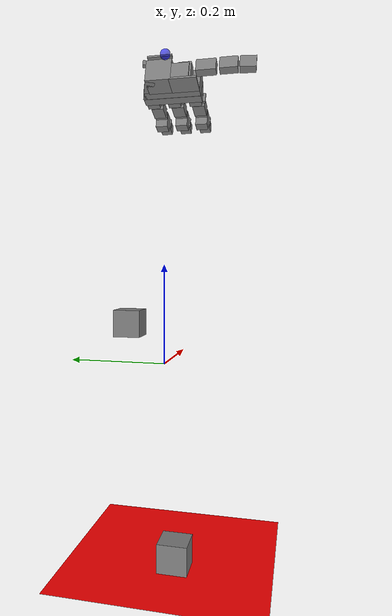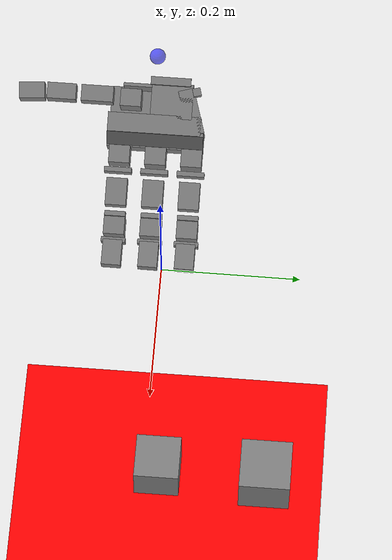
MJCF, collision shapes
<mujoco model="leap_hand_6dof_ctrl">
  <compiler meshdir=""/>

  <!-- Include LEAP Hand (provides finger actuators) -->
  <include file="leap_rh_mjx.xml"/>
  <!-- Include shared reorientation cube (visual + physical) -->
  <include file="reorientation_cube.xml"/>
  <statistic center="0.15 0 0" extent="0.4" meansize="0.01"/>

  <option timestep="0.01" integrator="Euler" iterations="5" ls_iterations="8">
      <flag eulerdamp="disable"/>
  </option>

  <visual>
    <headlight diffuse=".8 .8 .8" ambient=".2 .2 .2" specular="1 1 1"/>
    <rgba force="1 0 0 1"/>
    <global azimuth="120" elevation="-20"/>
    <map force="0.01" stiffness="500"/>
    <scale forcewidth="0.1" contactwidth="0.5" contactheight="0.2"/>
    <quality shadowsize="8192"/>
  </visual>

  <asset>
    <texture type="2d" name="groundplane" builtin="checker" mark="edge" rgb1="1 1 1" rgb2="1 1 1" markrgb="0 0 0"
      width="300" height="300"/>
    <material name="groundplane" texture="groundplane" texuniform="true" texrepeat="5 5" reflectance="0"/>
  </asset>

  <default>
    <default class="base6dof">
      <joint damping="1e-3" armature="0.0" limited="true"/>
      <position kp="120"/>
    </default>
  </default>

  <worldbody>
    <!-- 6-DoF controllable base -->
    <body name="hand_base" pos="0 0 0.6" quat="0 1 0 0">
      <!-- Provide mass and rotational inertia so this moving base is physically valid -->
      <inertial mass="1.0" diaginertia="0.01 0.01 0.01" pos="0 0 0"/>
      <!-- Translate -->
      <joint name="base_x" type="slide" axis="1 0 0" range="-1.0 1.0" damping="50.0" armature="0.01" class="base6dof"/>
      <joint name="base_y" type="slide" axis="0 1 0" range="-1.0 1.0" damping="50.0" armature="0.01" class="base6dof"/>
      <joint name="base_z" type="slide" axis="0 0 1" range="-1.4 3.0" damping="50.5" armature="0.015" class="base6dof"/>
      <!-- Rotate (ZYX order: yaw, pitch, roll) -->
      <joint name="base_yaw"   type="hinge" axis="0 0 1" range="-3.1416 3.1416" damping="2.0" armature="0.005" class="base6dof"/>
      <joint name="base_pitch" type="hinge" axis="0 1 0" range="-1.57 1.57" damping="2.0" armature="0.005" class="base6dof"/>
      <joint name="base_roll"  type="hinge" axis="1 0 0" range="-6.2832 6.2832" damping="2.0" armature="0.005" class="base6dof"/>
      <site name="base_mount_site" size="0.01" rgba="0 0 1 0.6"/>

    </body>

    <geom name="floor" pos="0 0 -0.5" size="0 0 0.01" type="plane"
    material="groundplane" contype="0" conaffinity="0" rgba="1 0 0 0.5"/>

    <!-- Invisible physical ground for contact tests (keeps grid visual clean) -->
    <geom type="plane" name="ground_physical" pos="0 0 -0.5" size="0 0 0.01" contype="1" conaffinity="1"
          friction="0.8 0.01 0.0001" rgba="1 1 1 0"/>

    <!-- 回転は気にしないが、位置としての目標としてgoal cubeを設定する。 -->
    <body name="goal" mocap="true" pos="0.325 0.17 0.0475">
      <geom type="mesh" mesh="cube_mesh" material="dexcube" contype="0" conaffinity="0" density="0" group="2"/>
      <geom type="box" size=".035 .035 .035" mass=".108" group="3"/>
    </body>
    <camera name="cam" pos="1.2 0.0 0.9" xyaxes="0.0 -1.0 0.0 0.4 0.0 0.9"/>
  </worldbody>

    <sensor>
    <!-- cube. -->
    <framepos name="cube_position" objtype="body" objname="cube"/>
    <framequat name="cube_orientation" objtype="body" objname="cube"/>
    <framelinvel name="cube_linvel" objtype="body" objname="cube"/>
    <frameangvel name="cube_angvel" objtype="body" objname="cube"/>
    <frameangacc name="cube_angacc" objtype="body" objname="cube"/>
    <framezaxis name="cube_upvector" objtype="body" objname="cube"/>

    <!-- hand. -->
    <framepos name="palm_position" objtype="site" objname="grasp_site"/>
    <framepos name="th_tip_position" objtype="site" objname="th_tip" reftype="site" refname="grasp_site"/>
    <framepos name="if_tip_position" objtype="site" objname="if_tip" reftype="site" refname="grasp_site"/>
    <framepos name="mf_tip_position" objtype="site" objname="mf_tip" reftype="site" refname="grasp_site"/>
    <framepos name="rf_tip_position" objtype="site" objname="rf_tip" reftype="site" refname="grasp_site"/>

    <!-- base (hand_base) pose and velocities -->
    <framepos name="base_position" objtype="body" objname="hand_base"/>
    <framequat name="base_orientation" objtype="body" objname="hand_base"/>
    <framelinvel name="base_linvel" objtype="body" objname="hand_base"/>
    <frameangvel name="base_angvel" objtype="body" objname="hand_base"/>

    <!-- base joint states -->
    <jointpos name="base_x_pos" joint="base_x"/>
    <jointpos name="base_y_pos" joint="base_y"/>
    <jointpos name="base_z_pos" joint="base_z"/>
    <jointpos name="base_yaw_pos" joint="base_yaw"/>
    <jointpos name="base_pitch_pos" joint="base_pitch"/>
    <jointpos name="base_roll_pos" joint="base_roll"/>

    <jointvel name="base_x_vel" joint="base_x"/>
    <jointvel name="base_y_vel" joint="base_y"/>
    <jointvel name="base_z_vel" joint="base_z"/>
    <jointvel name="base_yaw_vel" joint="base_yaw"/>
    <jointvel name="base_pitch_vel" joint="base_pitch"/>
    <jointvel name="base_roll_vel" joint="base_roll"/>

    <!-- goal. -->
    <framepos name="cube_goal_position" objtype="body" objname="goal"/>
    <framequat name="cube_goal_orientation" objtype="body" objname="goal"/>

  </sensor>

  <!-- Weld LEAP to the controllable base. Adjust relpose if needed to match the intended mounting -->
  <equality>
    <!-- Overdamped weld to reduce oscillations -->
    <weld body1="hand_base" body2="leap_mount" solref="0.01 2" solimp="0.98 0.995 0.001" relpose="0 0 0 1 0 0 0"/>
  </equality>

  <actuator>
    <!-- Position controllers for 6-DoF base (RL action can write to these) -->
    <position name="act_base_x"     joint="base_x"     kp="200" forcerange="-600 600"/>
    <position name="act_base_y"     joint="base_y"     kp="200" forcerange="-600 600"/>
    <position name="act_base_z"     joint="base_z"     kp="200" forcerange="-600 600"/>
    <position name="act_base_yaw"   joint="base_yaw"   kp="80"  forcerange="-250 250"/>
    <position name="act_base_pitch" joint="base_pitch" kp="80"  forcerange="-250 250"/>
    <position name="act_base_roll"  joint="base_roll"  kp="80"  forcerange="-250 250"/>
  </actuator>

  <!-- Keyframe for initial pose/control targets (also resets cube pose) -->
  <keyframe>
    <!-- qpos order:
         base(6), leap_mount_freejoint(7), finger joints(16), cube_freejoint(7) -->

    <key name="home" qpos="
      0.68 0.78 -0.31608 0.000307632 -0.968342 -1.26824e-05 0.249627 0.706534 -9.40659e-05 0.499187 0.764972 0.556337 -8.01922e-05 0.762973 -0.365415 0.626353 0.020783 1.40298 0.403332 1.6051 0.335327 -0.465174 0.832772 0.778537 0.796473 -0.465057 0.706203 0.706203 0.0357402 0.0357402 0.68 -0.78 0.915788 -8.37347e-17 -0.49089 0.000261597"
      qvel="
      -4.68571e-15 -5.0496e-15 2.12138e-15 -1.33856e-15 -3.46942e-16 2.61642e-16 3.63506e-15 -4.55496e-16 4.66854e-16 3.40429e-15 -5.28228e-15 -4.45993e-18 -5.37553e-15 -2.72037e-15 -5.33398e-15 -1.4865e-16 -1.09853e-14 -2.66017e-15 -1.06653e-14 2.69029e-15 2.61078e-15 5.37259e-15 -5.27737e-15 -7.89989e-16 -1.49461e-15 -1.34451e-14 4.48657e-15 1.2027e-15 -5.00556e-15 5.12734e-15 -4.73039e-15 2.48606e-16 1.88072e-16 -5.64889e-16"
      ctrl="
      0.69088 0 0.49822 0.76576 0.53824 0 0.76123 -0.366 0.61456 0.02094 1.4068 0.40456 1.6054 0.33504 -0.47 0.8335 0.68 -0.78 0.83 0 -0.48 0"
      mpos="0.325 0.17 0.0475"
      mquat="1 0 0 0"/>

    <key name="not_beautiful_meaningless" qpos="
      0 0 0 0 0 0
      0 0 0.6 1 0 0 0
      0.8 0 0.8 0.8
      0.8 0 0.8 0.8
      0.8 0 0.8 0.8
      0.8 0.8 0.8 0
      0.11 0.0 -0.465 1 0 0 0"
      ctrl="
      0 0 0 0  0 0 0 0  0 0 0 0  0 0 0 0
      0 0 0.3  0 0 0"
      mpos="0.325 0.17 0.0475"
      mquat="1 0 0 0"/>

  </keyframe>
</mujoco>

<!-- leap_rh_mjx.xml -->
<mujoco model="leap_rh">
  <compiler angle="radian" autolimits="true" meshdir=""/>

  <option timestep="0.01" integrator="Euler" iterations="5" ls_iterations="8">
    <flag eulerdamp="disable"/>
  </option>

  <custom>
    <numeric data="30" name="max_contact_points"/>
    <numeric data="12" name="max_geom_pairs"/>
  </custom>

  <asset>
    <material name="leap_black" rgba="0.2 0.2 0.2 1"/>
    <material name="leap_gray" rgba="0.5 0.5 0.5 1"/>
    <mesh name="leap_mount" file="../../../../../mujoco_playground/_src/manipulation/my_leap_hand/xmls/meshes/leap_mount.obj"/>

    <mesh name="palm" file="../../../../../mujoco_menagerie/leap_hand/assets/palm_right.obj"/>
    <mesh name="base" file="../../../../../mujoco_menagerie/leap_hand/assets/base.obj"/>
    <mesh name="proximal" file="../../../../../mujoco_menagerie/leap_hand/assets/proximal.obj"/>
    <mesh name="medial" file="../../../../../mujoco_menagerie/leap_hand/assets/medial.obj"/>
    <mesh name="distal" file="../../../../../mujoco_menagerie/leap_hand/assets/distal.obj"/>
    <mesh name="tip" file="../../../../../mujoco_menagerie/leap_hand/assets/tip.obj"/>
    <mesh name="thumb_base" file="../../../../../mujoco_menagerie/leap_hand/assets/thumb_base.obj"/>
    <mesh name="thumb_proximal" file="../../../../../mujoco_menagerie/leap_hand/assets/thumb_proximal.obj"/>
    <mesh name="thumb_distal" file="../../../../../mujoco_menagerie/leap_hand/assets/thumb_distal.obj"/>
    <mesh name="thumb_tip" file="../../../../../mujoco_menagerie/leap_hand/assets/thumb_tip.obj"/>
  </asset>

  <default>
    <default class="leap_rh">
      <geom group="3" friction="0.2" solref="0.02 1.5" solimp="0.9 0.99 0.001"/>
      <default class="leap_visual">
        <geom group="2" type="mesh" contype="0" conaffinity="0" density="0" material="leap_black"/>
      </default>
      <default class="tip">
        <geom size="0.01 0.012 0.016" pos="-0.0012969 -0.0335524 0.0145207" quat="0.703552 0.709596 -0.0292107 -0.0252203" type="box" friction="0.7 0.05 0.0002" rgba=".5 .5 .5 .3"/>
      </default>
      <default class="thumb_tip">
        <geom size="0.01 0.012 0.016" pos="-0.00127744 -0.0455619 -0.0144774" quat="0.708101 0.705072 -0.0294902 -0.024426" type="box" friction="0.7 0.05 0.0002" rgba=".5 .5 .5 .3"/>
      </default>

      <position kp="3.0" inheritrange="1"/>
      <!-- armature = rotor inertia * gear ratio^2 = 1.7 * 1e-8 * 288*288 = 0.00149376 -->
      <!-- max torque = 0.2196 = 600/1000*0.366 -->
      <!-- frictionloss = rough guess, small ish value -->
      <joint axis="0 0 -1" damping="0.2" armature="0.00149376" actuatorfrcrange="-0.2196 0.2196" frictionloss="0.02"/>

      <default class="mcp">
        <joint range="-0.314 2.23"/>
      </default>
      <default class="rot">
        <joint range="-1.047 1.047"/>
      </default>
      <default class="pip">
        <joint range="-0.506 1.885"/>
      </default>
      <default class="dip">
        <joint range="-0.366 2.042"/>
      </default>
      <default class="thumb_cmc">
        <joint range="-0.349 2.094"/>
      </default>
      <default class="thumb_axl">
        <joint range="-0.349 2.094"/>
      </default>
      <default class="thumb_mcp">
        <joint range="-0.47 2.443"/>
      </default>
      <default class="thumb_ipl">
        <joint range="-1.34 1.88"/>
      </default>

    </default>
  </default>

  <contact>
    <!-- filter the palm from all other finger bodies except the tips -->
    <exclude body1="palm" body2="if_bs"/>
    <exclude body1="palm" body2="mf_bs"/>
    <exclude body1="palm" body2="rf_bs"/>
    <exclude body1="palm" body2="th_mp"/>

    <exclude body1="palm" body2="if_px"/>
    <exclude body1="palm" body2="mf_px"/>
    <exclude body1="palm" body2="rf_px"/>
    <exclude body1="palm" body2="th_bs"/>

    <exclude body1="palm" body2="if_md"/>
    <exclude body1="palm" body2="mf_md"/>
    <exclude body1="palm" body2="rf_md"/>
    <exclude body1="palm" body2="th_px"/>

    <!-- filter the mount from all finger bodies except the tips -->
    <exclude body1="leap_mount" body2="if_bs"/>
    <exclude body1="leap_mount" body2="mf_bs"/>
    <exclude body1="leap_mount" body2="rf_bs"/>
    <exclude body1="leap_mount" body2="th_mp"/>

    <exclude body1="leap_mount" body2="if_px"/>
    <exclude body1="leap_mount" body2="mf_px"/>
    <exclude body1="leap_mount" body2="rf_px"/>
    <exclude body1="leap_mount" body2="th_bs"/>

    <exclude body1="leap_mount" body2="if_md"/>
    <exclude body1="leap_mount" body2="mf_md"/>
    <exclude body1="leap_mount" body2="rf_md"/>
    <exclude body1="leap_mount" body2="th_px"/>

    <!-- none of the base fingertip geoms can touch each other -->
    <exclude body1="if_bs" body2="mf_bs"/>
    <exclude body1="if_bs" body2="rf_bs"/>
    <exclude body1="mf_bs" body2="rf_bs"/>

    <exclude body1="th_mp" body2="if_bs"/>
    <exclude body1="th_mp" body2="mf_bs"/>
    <exclude body1="th_mp" body2="rf_bs"/>
  </contact>

  <worldbody>
    <light name="leap_spotlight" mode="targetbodycom" target="palm" pos="3 0 4"/>
    <body name="leap_mount" pos="0 0 0.6" quat="1 0 0 0" childclass="leap_rh">
      <freejoint name="leap_mount_freejoint"/>
       <geom name="leap_mount_visual" pos="0 0 0" quat="1 0 0 0" class="leap_visual" mesh="leap_mount"/>
      <geom name="leap_mount_collision_0" size="0.002 0.025 0.005" pos="0.0405 0.02 0.009"
        quat="0.57346234 0 0.81923192 0" type="box"/>
      <geom name="leap_mount_collision_1" size="0.005 0.005 0.005" pos="0.05 0.053 0.002"
        quat="0.4987168 0.64994038 -0.34910175 0.45495826" type="box"/>
      <site name="grasp_site" pos="0.11 0.0 0.03" group="4"/>
      <body name="palm" pos="0.124 -0.0305 -0.06045" quat="0 1 0 -0.175">
        <inertial pos="-0.049542 -0.042914 -0.010227" quat="0.565586 0.427629 -0.574956 0.408254" mass="0.237"
          diaginertia="0.000407345 0.000304759 0.000180736"/>
         <geom name="palm_visual" pos="-0.02 0.02575 -0.0347" quat="1 0 0 0" class="leap_visual" mesh="palm"/>
        <geom name="palm_collision_1" size="0.011 0.013 0.017" pos="-0.009 0.008 -0.011" type="box"/>
        <geom name="palm_collision_2" size="0.011 0.013 0.017" pos="-0.009 -0.037 -0.011" type="box"/>
        <geom name="palm_collision_3" size="0.011 0.013 0.017" pos="-0.009 -0.082 -0.011" type="box"/>
        <geom name="palm_collision_4" size="0.029 0.01 0.023" pos="-0.066 -0.078 -0.0115" quat="0.989016 0 0 -0.147806" type="box"/>
        <geom name="palm_collision_5" size="0.01 0.06 0.015" pos="-0.03 -0.035 -0.003" type="box"/>
        <geom name="palm_collision_6" size="0.005 0.06 0.01" pos="-0.032 -0.035 -0.024" quat="0.923956 0 0.382499 0" type="box"/>
        <geom name="palm_collision_7" size="0.012 0.058 0.023" pos="-0.048 -0.033 -0.0115" type="box"/>
        <geom name="palm_collision_8" size="0.022 0.026 0.023" pos="-0.078 -0.053 -0.0115" type="box"/>
        <geom name="palm_collision_9" size="0.002 0.018 0.017" pos="-0.098 -0.009 -0.006" type="box"/>
        <geom name="palm_collision_10" size="0.022 0.028 0.002" pos="-0.078 -0.003 0.01" type="box"/>
        <body name="if_bs" pos="-0.007 0.023 -0.0187" quat="0.5 0.5 0.5 -0.5">
          <inertial pos="-0.022516 0.033882 0.016359" quat="0.388092 0.677951 -0.247713 0.573067" mass="0.044"
            diaginertia="1.74972e-05 1.61504e-05 7.21342e-06"/>
          <joint name="if_mcp" class="mcp"/>
          <geom name="if_bs_visual" pos="0.0084 0.0077 0.01465" quat="1 0 0 0" class="leap_visual" mesh="base"/>
          <geom name="if_bs_collision_1" size="0.01 0.003 0.017" pos="0 0.018 0.0147" type="box"/>
          <body name="if_px" pos="-0.0122 0.0381 0.0145" quat="0.500003 -0.5 -0.499997 0.5">
            <inertial pos="0.0075 -0.0002 -0.011" quat="0 0.707107 0 0.707107" mass="0.032"
              diaginertia="4.8853e-06 4.3733e-06 3.0933e-06"/>
            <joint name="if_rot" class="rot"/>
             <geom name="if_px_visual" pos="0.0096 0.0002 0.0007" quat="0.500003 -0.5 -0.5 -0.499997" class="leap_visual"
              mesh="proximal"/>
            <geom name="if_px_collision" size="0.017 0.013 0.011" pos="0.0075 -0.0002 -0.011" type="box"/>

            <body name="if_md" pos="0.015 0.0143 -0.013" quat="0.500003 0.5 -0.5 0.499997">
              <inertial pos="0.0054215 -0.029148 0.015" quat="0.687228 0.687228 0.166487 0.166487" mass="0.037"
                diaginertia="8.28004e-06 8.1598e-06 5.39516e-06"/>
              <joint name="if_pip" class="pip"/>
              <geom name="if_md_visual" pos="0.0211 -0.0084 0.0097" quat="2.67949e-08 -1 0 0" class="leap_visual"
                mesh="medial"/>
              <geom name="if_md_collision_1" size="0.008 0.003 0.013" pos="0 -0.02 0.015" type="box"/>
              <geom name="if_md_collision_5" size="0.017 0.011 0.013" pos="0.0075 -0.035 0.015" type="box"/>
              <body name="if_ds" pos="0 -0.0361 0.0002">
                <inertial pos="-0.0008794 -0.027019 0.014594" quat="0.702905 0.710643 -0.0212937 -0.0214203"
                  mass="0.016" diaginertia="3.71863e-06 3.02396e-06 1.6518e-06"/>
                <joint name="if_dip" class="dip"/>
                 <geom name="if_ds_visual" pos="0.0132 -0.0061 0.0144" quat="2.67949e-08 1 0 0" class="leap_visual"
                  mesh="distal"/>
                <geom name="if_ds_collision_1" size="0.01 0.003 0.015" pos="0 -0.017 0.015" type="box"/>
                <geom name="if_tip" class="tip"/>
                 <geom type="mesh" mesh="tip" class="leap_visual" material="leap_gray"/>
                <site name="if_tip" pos="0 -0.05 0.015" group="4"/>
              </body>
            </body>
          </body>
        </body>
        <body name="mf_bs" pos="-0.0071 -0.0224 -0.0187" quat="0.500003 0.5 0.5 -0.499997">
          <inertial pos="-0.022516 0.033882 0.016359" quat="0.388092 0.677951 -0.247713 0.573067" mass="0.044"
            diaginertia="1.74972e-05 1.61504e-05 7.21342e-06"/>
          <joint name="mf_mcp" class="mcp"/>
          <geom name="mf_bs_visual" pos="0.0084 0.0077 0.01465" quat="1 0 0 0" class="leap_visual" mesh="base"/>
          <geom name="mf_bs_collision_1" size="0.01 0.003 0.017" pos="0 0.018 0.0147" type="box"/>
          <body name="mf_px" pos="-0.0122 0.0381 0.0145" quat="0.500003 -0.5 -0.499997 0.5">
            <inertial pos="0.0075 -0.0002 -0.011" quat="0 0.707107 0 0.707107" mass="0.032"
              diaginertia="4.8853e-06 4.3733e-06 3.0933e-06"/>
            <joint name="mf_rot" class="rot"/>
             <geom name="mf_px_visual" pos="0.0096 0.0003 0.0007" quat="0.500003 -0.5 -0.5 -0.499997" class="leap_visual"
              mesh="proximal"/>
            <geom name="mf_px_collision" size="0.017 0.013 0.011" pos="0.0075 -0.0002 -0.011" type="box"/>
            <body name="mf_md" pos="0.015 0.0143 -0.013" quat="0.500003 0.5 -0.5 0.499997">
              <inertial pos="0.0054215 -0.029148 0.015" quat="0.687228 0.687228 0.166487 0.166487" mass="0.037"
                diaginertia="8.28004e-06 8.1598e-06 5.39516e-06"/>
              <joint name="mf_pip" class="pip"/>
              <geom name="mf_md_visual" pos="0.0211 -0.0084 0.0097" quat="1.32679e-06 -1 0 0" class="leap_visual"
                mesh="medial"/>
              <geom name="mf_md_collision_1" size="0.008 0.003 0.013" pos="0 -0.02 0.015" type="box"/>
              <geom name="mf_md_collision_5" size="0.017 0.011 0.013" pos="0.0075 -0.035 0.015" type="box"/>
              <body name="mf_ds" pos="0 -0.0361 0.0002">
                <inertial pos="-0.0008794 -0.027019 0.014594" quat="0.702905 0.710643 -0.0212937 -0.0214203"
                  mass="0.016" diaginertia="3.71863e-06 3.02396e-06 1.6518e-06"/>
                <joint name="mf_dip" class="dip"/>
                 <geom name="mf_ds_visual" pos="0.0132 -0.0061 0.0145" quat="1.32679e-06 1 0 0" class="leap_visual"
                  mesh="distal"/>
                <geom name="mf_ds_collision_1" size="0.01 0.003 0.015" pos="0 -0.017 0.015" type="box"/>
                <geom name="mf_tip" class="tip"/>
                 <geom type="mesh" mesh="tip" class="leap_visual" material="leap_gray"/>
                <site name="mf_tip" pos="0 -0.05 0.015" group="4"/>
              </body>
            </body>
          </body>
        </body>
        <body name="rf_bs" pos="-0.00709 -0.0678 -0.0187" quat="0.500003 0.5 0.5 -0.499997">
          <inertial pos="-0.022516 0.033882 0.016359" quat="0.388092 0.677951 -0.247713 0.573067" mass="0.044"
            diaginertia="1.74972e-05 1.61504e-05 7.21342e-06"/>
          <joint name="rf_mcp" class="mcp"/>
          <geom name="rf_bs_visual" pos="0.0084 0.0077 0.01465" quat="1 0 0 0" class="leap_visual" mesh="base"/>
          <geom name="rf_bs_collision_1" size="0.01 0.003 0.017" pos="0 0.018 0.0147" type="box"/>
          <body name="rf_px" pos="-0.0122 0.0381 0.0145" quat="0.500003 -0.5 -0.499997 0.5">
            <inertial pos="0.0075 -0.0002 -0.011" quat="0 0.707107 0 0.707107" mass="0.032"
              diaginertia="4.8853e-06 4.3733e-06 3.0933e-06"/>
            <joint name="rf_rot" class="rot"/>
             <geom name="rf_px_visual" pos="0.0096 0.0003 0.0007" quat="0.500003 -0.5 -0.5 -0.499997" class="leap_visual"
              mesh="proximal"/>
            <geom name="rf_px_collision" size="0.017 0.013 0.011" pos="0.0075 -0.0002 -0.011" type="box"/>
            <body name="rf_md" pos="0.015 0.0143 -0.013" quat="0.500003 0.5 -0.5 0.499997">
              <inertial pos="0.0054215 -0.029148 0.015" quat="0.687228 0.687228 0.166487 0.166487" mass="0.037"
                diaginertia="8.28004e-06 8.1598e-06 5.39516e-06"/>
              <joint name="rf_pip" class="pip"/>
              <geom name="rf_md_visual" pos="0.0211 -0.0084 0.0097" quat="0 -1 0 0" class="leap_visual" mesh="medial"/>
              <geom name="rf_md_collision_1" size="0.008 0.003 0.013" pos="0 -0.02 0.015" type="box"/>
              <geom name="rf_md_collision_5" size="0.017 0.011 0.013" pos="0.0075 -0.035 0.015" type="box"/>
              <body name="rf_ds" pos="0 -0.03609 0.0002">
                <inertial pos="-0.0008794 -0.027019 0.014594" quat="0.702905 0.710643 -0.0212937 -0.0214203"
                  mass="0.016" diaginertia="3.71863e-06 3.02396e-06 1.6518e-06"/>
                <joint name="rf_dip" class="dip"/>
                 <geom name="rf_ds_visual" pos="0.0132 -0.0061 0.0145" quat="0 1 0 0" class="leap_visual" mesh="distal"/>
                <geom name="rf_ds_collision_1" size="0.01 0.003 0.015" pos="0 -0.017 0.015" type="box"/>
                <geom name="rf_tip" class="tip"/>
                 <geom type="mesh" mesh="tip" class="leap_visual" material="leap_gray"/>
                <site name="rf_tip" pos="0 -0.05 0.015" group="4"/>
              </body>
            </body>
          </body>
        </body>
        <body name="th_mp" pos="-0.0693 -0.0012 -0.0216" quat="0.707109 0 0.707105 0">
          <inertial pos="0.0075 -0.0002 -0.011" quat="0 0.707107 0 0.707107" mass="0.032"
            diaginertia="4.8853e-06 4.3733e-06 3.0933e-06"/>
          <joint name="th_cmc" class="thumb_cmc"/>
          <geom name="th_mp_visual" pos="-0.0053 0.0003 0.00078" quat="0.500003 -0.5 -0.5 -0.499997" class="leap_visual"
            mesh="proximal"/>
          <geom name="th_mp_collision" size="0.017 0.013 0.011" pos="-0.0075 -0.0002 -0.011" type="box"/>
          <body name="th_bs" pos="0 0.0143 -0.013" quat="0.500003 0.5 -0.5 0.499997">
            <inertial pos="0 0 -0.0070806" quat="0.707107 0.707107 0 0" mass="0.003"
              diaginertia="6.1932e-07 5.351e-07 2.1516e-07"/>
            <joint name="th_axl" class="thumb_axl"/>
            <geom name="th_bs_collision_1" pos="0.01196 0 -0.0158" quat="0.707109 0.707105 0 0" class="leap_visual" mesh="thumb_base"/>
            <body name="th_px" pos="0 0.0145 -0.017" quat="0.707109 -0.707105 0 0">
              <inertial pos="-0.0020593 0.015912 -0.013733" quat="0.698518 0.697382 -0.104933 0.121324" mass="0.038"
                diaginertia="9.87104e-06 9.32653e-06 4.36203e-06"/>
              <joint name="th_mcp" class="thumb_mcp"/>
              <geom name="th_px_visual" pos="0.0439 0.0579 -0.0086" quat="1 0 0 0" class="leap_visual" mesh="thumb_proximal"/>
              <geom name="th_px_collision_1" size="0.01 0.02 0.012" pos="0 0.0105 -0.014" type="box"/>
              <body name="th_ds" pos="0 0.0466 0.0002" quat="1.32679e-06 0 0 1">
                <inertial pos="0.00096191 -0.024203 -0.014419" quat="0.35287 0.311272 -0.632839 0.614904" mass="0.049"
                  diaginertia="2.08591e-05 2.0402e-05 4.71335e-06"/>
                <joint name="th_ipl" class="thumb_ipl"/>
                <geom name="th_ds_visual" pos="0.0625 0.0784 0.0489" quat="1 0 0 0" class="leap_visual" mesh="thumb_distal"/>
                <geom name="th_ds_collision_1" size="0.01 0.018 0.012" pos="0 -0.0085 -0.015" type="box"/>
                <geom name="th_tip" class="thumb_tip"/>
                <site name="th_tip" pos="0 -0.06 -0.015" group="4"/>
                <geom type="mesh" mesh="thumb_tip" class="leap_visual" material="leap_gray"/>
              </body>
            </body>
          </body>
        </body>
      </body>
    </body>
  </worldbody>

  <actuator>
    <position name="if_mcp_act" joint="if_mcp" class="mcp"/>
    <position name="if_rot_act" joint="if_rot" class="rot"/>
    <position name="if_pip_act" joint="if_pip" class="pip"/>
    <position name="if_dip_act" joint="if_dip" class="dip"/>
    <position name="mf_mcp_act" joint="mf_mcp" class="mcp"/>
    <position name="mf_rot_act" joint="mf_rot" class="rot"/>
    <position name="mf_pip_act" joint="mf_pip" class="pip"/>
    <position name="mf_dip_act" joint="mf_dip" class="dip"/>
    <position name="rf_mcp_act" joint="rf_mcp" class="mcp"/>
    <position name="rf_rot_act" joint="rf_rot" class="rot"/>
    <position name="rf_pip_act" joint="rf_pip" class="pip"/>
    <position name="rf_dip_act" joint="rf_dip" class="dip"/>
    <position name="th_cmc_act" joint="th_cmc" class="thumb_cmc"/>
    <position name="th_axl_act" joint="th_axl" class="thumb_axl"/>
    <position name="th_mcp_act" joint="th_mcp" class="thumb_mcp"/>
    <position name="th_ipl_act" joint="th_ipl" class="thumb_ipl"/>
  </actuator>
</mujoco>

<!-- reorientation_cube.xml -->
<mujoco>
  <default>
    <default class="cube">
      <geom friction=".3 0.05" conaffinity="2" condim="3"/>
    </default>
  </default>

  <asset>
    <texture name="cube" type="cube" fileup="reorientation_cube_textures/fileup.png"
      fileback="reorientation_cube_textures/fileback.png" filedown="reorientation_cube_textures/filedown.png"
      filefront="reorientation_cube_textures/filefront.png" fileleft="reorientation_cube_textures/fileleft.png"
      fileright="reorientation_cube_textures/fileright.png"/>
    <material name="cube" texture="cube"/>
    <texture name="graycube" type="cube" fileup="reorientation_cube_textures/grayup.png"
      fileback="reorientation_cube_textures/grayback.png" filedown="reorientation_cube_textures/graydown.png"
      filefront="reorientation_cube_textures/grayfront.png" fileleft="reorientation_cube_textures/grayleft.png"
      fileright="reorientation_cube_textures/grayright.png"/>
    <material name="graycube" texture="graycube"/>
    <texture name="dexcube" type="2d" file="reorientation_cube_textures/dex_cube.png"/>
    <material name="dexcube" texture="dexcube"/>
    <mesh name="cube_mesh" file="meshes/dex_cube.obj" scale="0.035 0.035 0.035"/>
  </asset>

  <worldbody>
    <!-- Place cube on the physical ground plane at z = -0.5 + half-size (0.035) -->
    <body name="cube" pos="0.11 0.0 -0.465" quat="1 0 0 0" childclass="cube">
      <freejoint name="cube_freejoint"/>
      <geom type="mesh" mesh="cube_mesh" material="dexcube" contype="0" conaffinity="0" density="0" group="2"/>
      <geom name="cube" type="box" size=".035 .035 .035" mass=".108" group="3"/>
      <site name="cube_center" pos="0 0 0" group="4"/>
    </body>
  </worldbody>
</mujoco>
